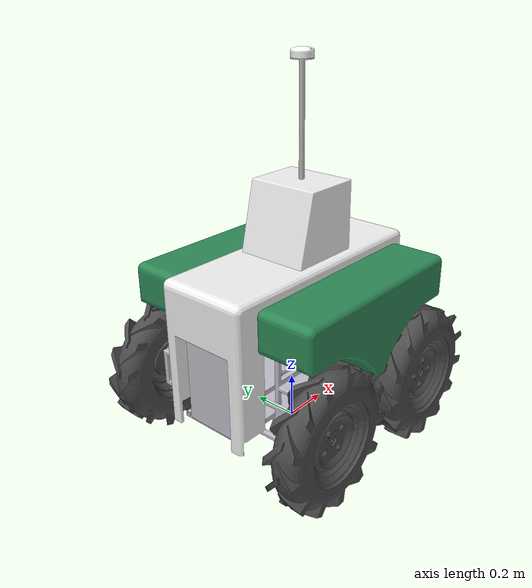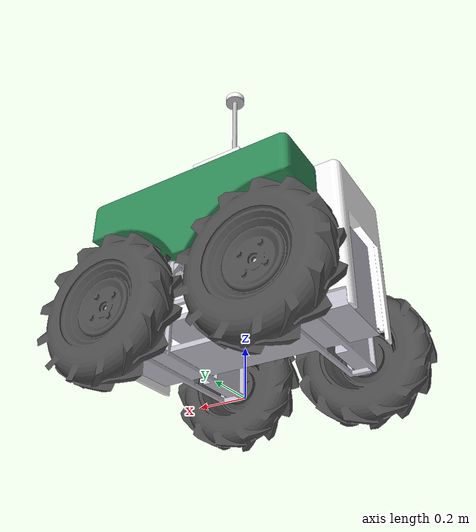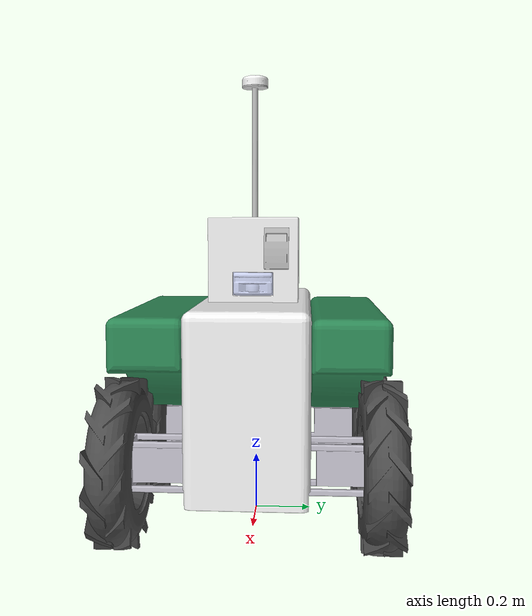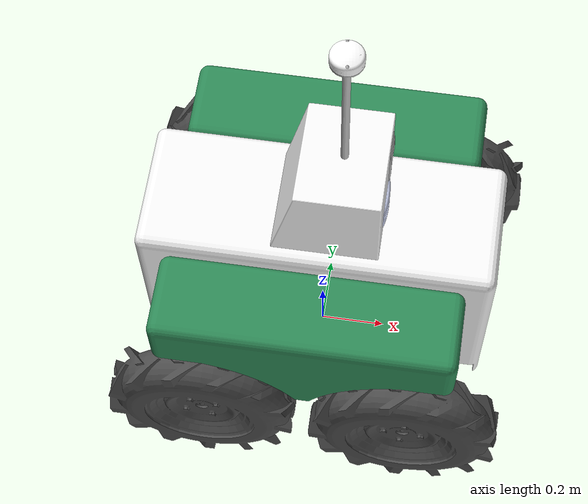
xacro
<?xml version="1.0"?>
<robot xmlns:xacro="http://www.ros.org/wiki/xacro" name="vinescout">

  <xacro:include filename="vinescout.gazebo.xacro"/>
  <xacro:include filename="lidar.xacro"/>
  <xacro:include filename="kinect_specs.xacro"/>

<!--inertia xacros-->
  <xacro:macro name="wheel_inertia" params="mass radius height">
    <inertia ixx="${mass*(3*radius*radius + height*height)/12}" ixy="0" ixz="0"
              iyy="${mass*(3*radius*radius + height*height)/12}" iyz="0"
              izz="${mass*radius*radius/2}" />
  </xacro:macro>

  <xacro:macro name="box_inertia" params="mass x y z">
    <inertia ixx="${mass*(y*y + z*z)/12}" ixy="0" ixz="0"
              iyy="${mass*(x*x + z*z)/12}" iyz="0"
              izz="${mass*(x*x + y*y)/12}" />
  </xacro:macro>

  <!--xacro for wheels-->
  <xacro:macro name="wheel" params="name x y rot_y joint_axis">
  <!--for param name: left/right_front/rear-->
    <link name="wheel_${name}_link">
      <inertial>
        <origin xyz="0 0 -0.027" rpy="0 0 0" />
        <mass value="22.6210289176488" />
        <xacro:wheel_inertia mass="22.6210289176488" radius="0.29" height="0.14" />
      </inertial>
      <visual>
        <origin xyz="0 0 0" rpy="0 0 0" />
        <geometry>
          <mesh filename="package://vinescout/meshes/${name}_link.STL" />
        </geometry>
        <material name="">
          <color rgba="0.3 0.3 0.3 1" />
        </material>
      </visual>
      <collision>
        <origin rpy="0 0 0" xyz="0 0 -0.027"/>
        <geometry>
          <cylinder length="0.14" radius="0.29"/>
        </geometry>
      </collision>
    </link>

    <joint name="wheel_${name}_joint" type="continuous">
      <origin xyz="${x} ${y} 0.065" rpy="1.5708 0 ${rot_y}" />
      <parent link="chassis_link" />
      <child link="wheel_${name}_link" />
      <axis xyz="${joint_axis}" />
    </joint>

    <transmission name="wheel_${name}_trans" type="SimpleTransmission">
      <type>transmission_interface/SimpleTransmission</type>
      <actuator name="wheel_${name}_motor">
        <hardwareInterface>hardware_interface/VelocityJointInterface</hardwareInterface>
        <mechanicalReduction>1</mechanicalReduction>
      </actuator>
      <joint name="wheel_${name}_joint">
        <hardwareInterface>hardware_interface/VelocityJointInterface</hardwareInterface>
      </joint>
    </transmission>
  </xacro:macro>

  <!--xacro for fenders-->
  <xacro:macro name="fender" params="name y">
    <link name="fender_${name}_link">
      <inertial>
        <origin xyz="0 0 0.15" rpy="0 0 0" />
        <mass value="50" />
        <xacro:box_inertia mass="50" x="0.75" y="0.15" z="0.35" />
      </inertial>
      <visual>
        <origin xyz="0 0 0" rpy="0 0 0" />
        <geometry>
          <mesh filename="package://vinescout/meshes/fender_${name}_link.STL" />
        </geometry>
        <material
          name="">
          <color rgba="0.180392156862745 0.541176470588235 0.341176470588235 1" />
        </material>
      </visual>
      <collision>
        <origin xyz="0 0 0" rpy="0 0 0" />
        <geometry>
          <mesh filename="package://vinescout/meshes/fender_${name}_link.STL" />
        </geometry>
      </collision>
    </link>

    <joint name="fender_${name}_joint" type="fixed">
      <origin xyz="0.006 ${y} -0.33" rpy="0 0 0" />
      <parent link="top_chassis_link" />
      <child link="fender_${name}_link" />
    </joint>
  </xacro:macro>

  <!--world c.s (on ground plane below the robot)-->
  <link name="base_footprint"/>

  <joint name="base_joint" type="fixed">
    <parent link="base_footprint"/>
    <child link="chassis_link"/>
    <origin rpy="0 0 0" xyz="0 0 0.19075"/>
  </joint>

  <!--base link (chassis)-->
  <link name="chassis_link">
    <inertial>
      <origin xyz="0 0 0.203" rpy="0 0 0" />
      <mass value="100" />
      <xacro:box_inertia mass="100" x="0.5" y="0.3" z="0.45" />
    </inertial>
    <visual>
      <origin xyz="0 0 0" rpy="0 0 0" />
      <geometry>
        <mesh filename="package://vinescout/meshes/base_link.STL" />
      </geometry>
      <material name="">
        <color rgba="0.764705882352941 0.756862745098039 0.8 1" />
      </material>
    </visual>
    <collision>
      <origin rpy="0 0 0" xyz="0 0 0.253"/>
      <geometry>
        <box size="1 0.36 0.53"/>
      </geometry>
    </collision>
  </link>

  <!--top chassis-->
  <link name="top_chassis_link">
    <!--inertia together with chassis_link-->
    <visual>
      <origin rpy="0 0 0" xyz="0 0 0"/>
      <geometry>
        <mesh filename="package://vinescout/meshes/top_chassis_link.STL"/>
      </geometry>
      <material name="">
        <color rgba="0.956862745098039 0.956862745098039 0.956862745098039 1"/>
      </material>
    </visual>
    <collision>
      <origin rpy="0 0 0" xyz="0 0 0"/>
      <geometry>
        <mesh filename="package://vinescout/meshes/top_chassis_link.STL"/>
      </geometry>
    </collision>
  </link>

  <joint name="top_chassis_joint" type="fixed">
    <origin xyz="-0.006 0 0.527" rpy="0 0 0" />
    <parent link="chassis_link" />
    <child link="top_chassis_link" />
  </joint>

  <!--SENSORS-->
  <!--gps-->
  <link name="gps_mount_link">
    <visual>
      <origin rpy="0 0 0" xyz="0 0 0"/>
      <geometry>
        <mesh filename="package://vinescout/meshes/gps_mount_link.STL"/>
      </geometry>
      <material name="">
        <color rgba="0.749019607843137 0.749019607843137 0.749019607843137 1"/>
      </material>
    </visual>
    <collision>
      <origin rpy="0 0 0" xyz="0 0 0"/>
      <geometry>
        <mesh filename="package://vinescout/meshes/gps_mount_link.STL"/>
      </geometry>
    </collision>
  </link>

  <joint name="gps_mount_joint" type="fixed">
    <origin rpy="0 0 0" xyz="0.065575 0 0.36"/>
    <parent link="top_chassis_link"/>
    <child link="gps_mount_link"/>
  </joint>

  <link name="gps_link">
    <visual>
      <origin rpy="0 0 0" xyz="0 0 0"/>
      <geometry>
        <mesh filename="package://vinescout/meshes/gps_link.STL"/>
      </geometry>
      <material name="">
        <color rgba="1 1 1 1"/>
      </material>
    </visual>
    <collision>
      <origin rpy="0 0 0" xyz="0 0 0"/>
      <geometry>
        <mesh filename="package://vinescout/meshes/gps_link.STL"/>
      </geometry>
    </collision>
  </link>

  <joint name="gps_joint" type="fixed">
    <origin rpy="0 0 0" xyz="0 0 0.455000000000005"/>
    <parent link="gps_mount_link"/>
    <child link="gps_link"/>
  </joint>

  <!--imu-->
  <link name="imu_link"/>
  <joint name="imu_joint" type="fixed">
    <origin xyz="0 0 0.151" rpy="0 0 0" />
    <parent link="chassis_link" />
    <child link="imu_link" />
  </joint>

  <!--WHEELS-->
  <xacro:wheel name="left_front" x="0.31" y="0.463" rot_y="-3.1416" joint_axis="0 0 1"/>
  <xacro:wheel name="left_rear" x="-0.31" y="0.463" rot_y="-3.1416" joint_axis="0 0 1"/>
  <xacro:wheel name="right_front" x="0.31" y="-0.463" rot_y="0" joint_axis="0 0 -1"/>
  <xacro:wheel name="right_rear" x="-0.31" y="-0.463" rot_y="0" joint_axis="0 0 -1"/>

  <!--FENDERS-->
  <xacro:fender name="left" y="0.3275"/>
  <xacro:fender name="right" y="-0.3275"/>

</robot>

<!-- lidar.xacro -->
<robot xmlns:xacro="http://www.ros.org/wiki/xacro" name="vinescout">

  <link name="lidar_link">
    <visual>
      <origin rpy="0 0 0" xyz="0 0 0"/>
      <geometry>
        <mesh filename="package://vinescout/meshes/lidar_link.STL"/>
      </geometry>
      <material name="">
        <color rgba="0.792156862745098 0.819607843137255 0.933333333333333 1"/>
      </material>
    </visual>
    <collision>
      <origin rpy="0 0 0" xyz="0 0 0"/>
      <geometry>
        <mesh filename="package://vinescout/meshes/lidar_link.STL"/>
      </geometry>
    </collision>
  </link>

  <joint name="lidar_joint" type="fixed">
    <origin rpy="0 0 0" xyz="0.186 0 0.13214"/>
    <parent link="top_chassis_link"/>
    <child link="lidar_link"/>
  </joint>

  <!--GAZEBO LIDAR PLUGIN-->
  <gazebo reference="lidar_link">
    <sensor name="2d_lidar" type="ray">
        <visualize>false</visualize>
        <update_rate>15</update_rate>
        <ray>
          <scan>
            <horizontal>
              <samples>11</samples> <!-- 1 scan consists of 11 measurements -->
              <min_angle>-0.767945</min_angle> <!-- Half of 88 degrees converted to radians -->
              <max_angle>0.767945</max_angle>
            </horizontal>
          </scan>
          <range>
            <min>0.2</min>
            <max>8</max>
            <resolution>0.001</resolution>
          </range>
        </ray>
        <plugin name="laser_controller" filename="libgazebo_ros_laser.so">
          <robotNamespace>/</robotNamespace>
          <topicName>/laser/scan</topicName>
          <frameName>lidar_link</frameName>
        </plugin>
    </sensor>
  </gazebo>
</robot>

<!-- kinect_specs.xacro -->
<robot xmlns:xacro="http://www.ros.org/wiki/xacro" name="vinescout">

  <!--to correct the orientation of the frame for the gazebo camera plugin-->
  <link name="camera_optical_link"/>

  <joint name="camera_optical_joint" type="fixed">
    <parent link="camera_link"/>
    <child link="camera_optical_link"/>
    <origin rpy="-1.5708 0 -1.5708" xyz="0.0 0.0 0.0"/>
  </joint>

  <link name="camera_link">
    <visual>
      <origin rpy="1.5708 0 1.5708" xyz="0 0 0"/>
      <geometry>
        <mesh filename="package://vinescout/meshes/camera_link.STL"/>
      </geometry>
      <material name="">
        <color rgba="0.749019607843137 0.749019607843137 0.749019607843137 1"/>
      </material>
    </visual>
    <collision>
      <origin rpy="0 0 0" xyz="0 0 0"/>
      <geometry>
        <mesh filename="package://vinescout/meshes/camera_link.STL"/>
      </geometry>
    </collision>
  </link>

  <joint name="camera_joint" type="fixed">
    <origin rpy="0 0 0" xyz="0.18599999999998 0.0798452842845041 0.290844999999986"/>
    <parent link="top_chassis_link"/>
    <child link="camera_link"/>
  </joint>

  <!--GAZEBO PLUGIN FOR CAM-->
  <gazebo reference="camera_link">
    <sensor type="depth" name="tof_camera">
      <update_rate>20</update_rate>
      <!--Kinect cam specs-->
      <camera>
        <horizontal_fov>1.047198</horizontal_fov>
        <image>
          <width>640</width>
          <height>480</height>
          <format>R8G8B8</format>
        </image>
        <clip>
          <near>0.05</near>
          <far>3</far>
        </clip>
      </camera>

      <plugin name="kinect_controller" filename="libgazebo_ros_openni_kinect.so">
        <robotNamespace>/</robotNamespace>
        <cameraName>tof_camera</cameraName>
        <alwaysOn>true</alwaysOn>
        <frameName>camera_optical_link</frameName>
      </plugin>
    </sensor>
  </gazebo>

</robot>
